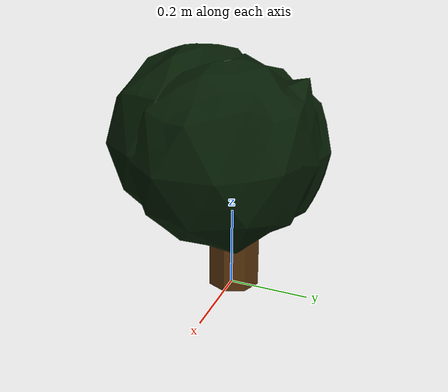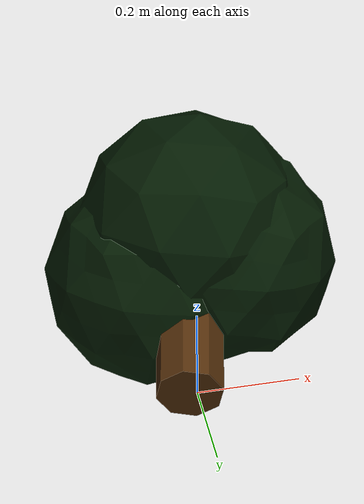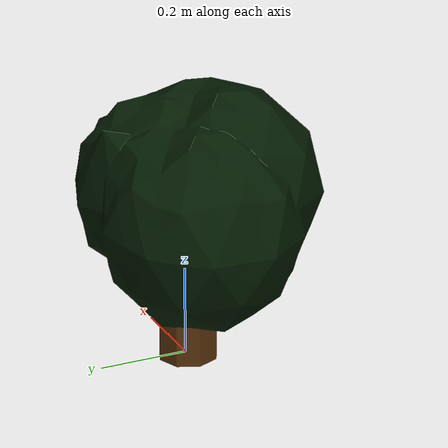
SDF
<?xml version="1.0" ?>
<sdf version="1.8">
  <model name="DecoTreeRound">
    <static>true</static>
    <link name="DecoTreeRound">
      <visual name="visual">
        <geometry>
          <mesh>
            <uri>model://YahboomTrack/DecoTreeRound/meshes/DecoTreeRound.dae</uri>
            <scale>2.0 2.0 2.0</scale>
          </mesh>
        </geometry>
      </visual>
      <collision name="visual">
        <geometry>
          <mesh>
            <uri>model://YahboomTrack/DecoTreeRound/meshes/DecoTreeRound.dae</uri>
            <scale>2.0 2.0 2.0</scale>
          </mesh>
        </geometry>
      </collision>
    </link>
  </model>
</sdf>
